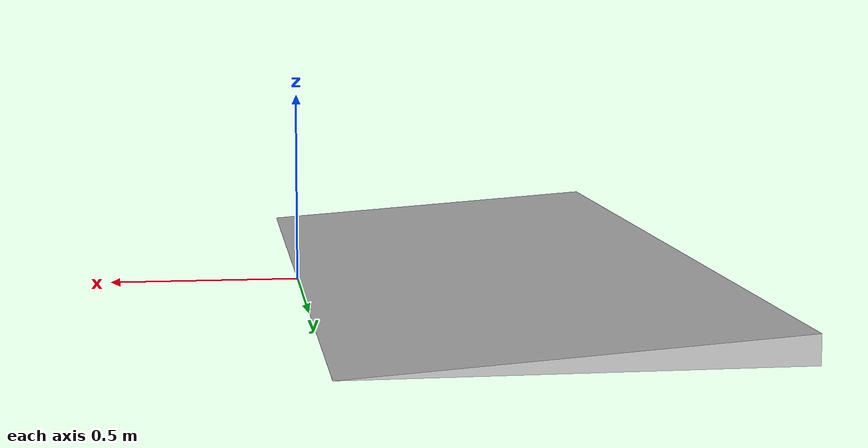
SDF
<?xml version="1.0" ?>
<sdf version="1.6">
  <model name="entry">
    <link name="link">
      <inertial>
        <mass>1000</mass>
        <inertia>
          <ixx>840083.33</ixx>
          <ixy>0</ixy>
          <ixz>0</ixz>
          <iyy>475500.0</iyy>
          <iyz>0</iyz>
          <izz>1302083.33</izz>
        </inertia>
      </inertial>
      <collision name="collision">
        <geometry>
            <mesh>
              <uri>model://entry/meshes/entry.dae</uri>
              <scale>1 1 1</scale>
            </mesh>
          </geometry>
        <surface>
          <friction>
            <ode>
              <mu>0.5</mu>
              <mu2>0.5</mu2>
              <fdir1>0 0 0</fdir1>
              <slip1>0</slip1>
              <slip2>0</slip2>
            </ode>
          </friction>
        </surface>
      </collision>
      <visual name="visual">
        <geometry>
            <mesh>
              <uri>model://entry/meshes/entry.dae</uri>
            </mesh>
          </geometry>
        <meta> <layer> 0 </layer></meta>
      </visual>
    </link>
    <static>1</static>
  </model>
</sdf>
